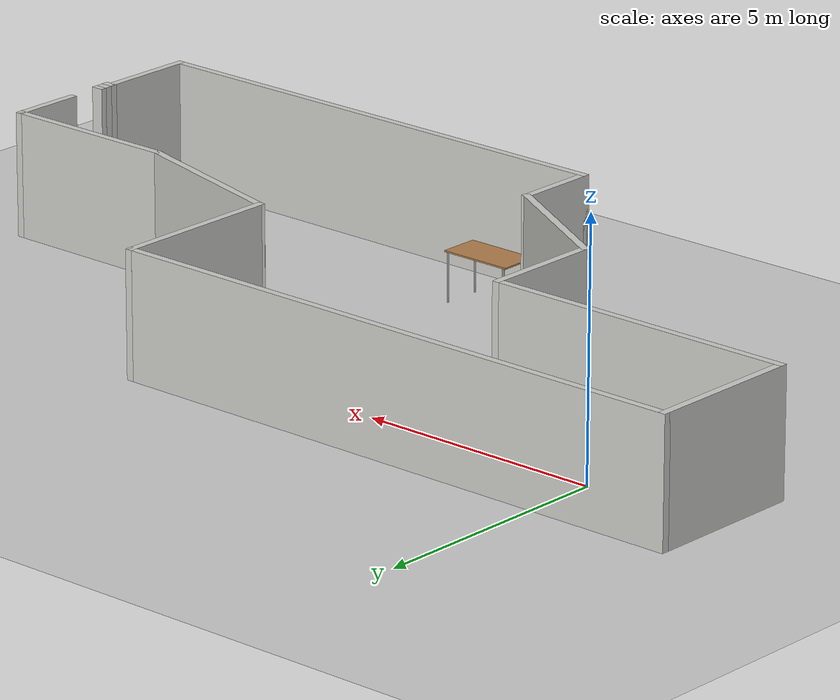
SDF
<sdf version="1.7">
 <world name="default">
  <light name="sun" type="directional">
   <pose>0 0 10 0 -0 0</pose>
   <diffuse>0.8 0.8 0.8 1</diffuse>
   <specular>0.2 0.2 0.2 1</specular>
   <attenuation>
    <range>1000</range>
    <constant>0.9</constant>
    <linear>0.01</linear>
    <quadratic>0.001</quadratic>
   </attenuation>
   <direction>-0.5 0.1 -0.9</direction>
   <spot><inner_angle>0</inner_angle><outer_angle>0</outer_angle><falloff>0</falloff></spot>
  </light>
  <model name="ground_plane">
   <static>1</static>
   <link name="link">
    <collision name="collision">
     <geometry><plane><normal>0 0 1</normal><size>100 100</size></plane></geometry>
     <surface>
      <contact><collide_bitmask>65535</collide_bitmask></contact>
      <friction><ode><mu>100</mu><mu2>50</mu2></ode></friction>
     </surface>
    </collision>
    <visual name="visual">
     <cast_shadows>0</cast_shadows>
     <geometry><plane><normal>0 0 1</normal><size>100 100</size></plane></geometry>
     <material>
      <script><uri>file://media/materials/scripts/gazebo.material</uri><name>Gazebo/Grey</name></script>
     </material>
    </visual>
   </link>
  </model>
  <gravity>0 0 -9.8</gravity>
  <magnetic_field>6e-06 2.3e-05 -4.2e-05</magnetic_field>
  <atmosphere type="adiabatic"/>
  <physics type="ode">
   <max_step_size>0.001</max_step_size>
   <real_time_factor>1</real_time_factor>
   <real_time_update_rate>1000</real_time_update_rate>
  </physics>
  <scene><ambient>0.4 0.4 0.4 1</ambient><background>0.7 0.7 0.7 1</background><shadows>1</shadows></scene>
  <spherical_coordinates>
   <surface_model>EARTH_WGS84</surface_model>
   <latitude_deg>0</latitude_deg>
   <longitude_deg>0</longitude_deg>
   <elevation>0</elevation>
   <heading_deg>0</heading_deg>
  </spherical_coordinates>
  <model name="z-shaped-room">
   <pose>6.87303 -2.86722 0 0 -0 0</pose>
   <link name="Wall_0">
    <collision name="Wall_0_Collision">
     <geometry><box><size>1.5 0.15 2.5</size></box></geometry>
     <pose>0 0 1.25 0 -0 0</pose>
    </collision>
    <visual name="Wall_0_Visual">
     <pose>0 0 1.25 0 -0 0</pose>
     <geometry><box><size>1.5 0.15 2.5</size></box></geometry>
     <material>
      <script><uri>file://media/materials/scripts/gazebo.material</uri><name>Gazebo/CeilingTiled</name></script>
      <ambient>1 1 1 1</ambient>
     </material>
     <meta><layer>0</layer></meta>
    </visual>
    <pose>9.71367 -0.656749 0 0 -0 1.5708</pose>
   </link>
   <link name="Wall_1">
    <collision name="Wall_1_Collision">
     <geometry><box><size>3.75 0.15 2.5</size></box></geometry>
     <pose>0 0 1.25 0 -0 0</pose>
    </collision>
    <visual name="Wall_1_Visual">
     <pose>0 0 1.25 0 -0 0</pose>
     <geometry><box><size>3.75 0.15 2.5</size></box></geometry>
     <material>
      <script><uri>file://media/materials/scripts/gazebo.material</uri><name>Gazebo/CeilingTiled</name></script>
      <ambient>1 1 1 1</ambient>
     </material>
     <meta><layer>0</layer></meta>
    </visual>
    <pose>7.91367 0.018251 0 0 -0 3.14159</pose>
   </link>
   <link name="Wall_10">
    <collision name="Wall_10_Collision">
     <geometry><box><size>10.5 0.15 2.5</size></box></geometry>
     <pose>0 0 1.25 0 -0 0</pose>
    </collision>
    <visual name="Wall_10_Visual">
     <pose>0 0 1.25 0 -0 0</pose>
     <geometry><box><size>10.5 0.15 2.5</size></box></geometry>
     <material>
      <script><uri>file://media/materials/scripts/gazebo.material</uri><name>Gazebo/CeilingTiled</name></script>
      <ambient>1 1 1 1</ambient>
     </material>
     <meta><layer>0</layer></meta>
    </visual>
    <pose>4.49601 -4.3 0 0 -0 0</pose>
   </link>
   <link name="Wall_11">
    <collision name="Wall_11_Collision">
     <geometry><box><size>2 0.15 2.5</size></box></geometry>
     <pose>0 0 1.25 0 -0 0</pose>
    </collision>
    <visual name="Wall_11_Visual">
     <pose>0 0 1.25 0 -0 0</pose>
     <geometry><box><size>2 0.15 2.5</size></box></geometry>
     <material>
      <script><uri>file://media/materials/scripts/gazebo.material</uri><name>Gazebo/CeilingTiled</name></script>
      <ambient>1 1 1 1</ambient>
     </material>
     <meta><layer>0</layer></meta>
    </visual>
    <pose>9.67101 -3.375 0 0 -0 1.5708</pose>
   </link>
   <link name="Wall_2">
    <collision name="Wall_2_Collision">
     <geometry><box><size>3.75 0.15 2.5</size></box></geometry>
     <pose>0 0 1.25 0 -0 0</pose>
    </collision>
    <visual name="Wall_2_Visual">
     <pose>0 0 1.25 0 -0 0</pose>
     <geometry><box><size>3.75 0.15 2.5</size></box></geometry>
     <material>
      <script><uri>file://media/materials/scripts/gazebo.material</uri><name>Gazebo/CeilingTiled</name></script>
      <ambient>1 1 1 1</ambient>
     </material>
     <meta><layer>0</layer></meta>
    </visual>
    <pose>4.375 0.484126 0 0 -0 2.87979</pose>
   </link>
   <link name="Wall_3">
    <collision name="Wall_3_Collision">
     <geometry><box><size>3.5 0.15 2.5</size></box></geometry>
     <pose>0 0 1.25 0 -0 0</pose>
    </collision>
    <visual name="Wall_3_Visual">
     <pose>0 0 1.25 0 -0 0</pose>
     <geometry><box><size>3.5 0.15 2.5</size></box></geometry>
     <material>
      <script><uri>file://media/materials/scripts/gazebo.material</uri><name>Gazebo/CeilingTiled</name></script>
      <ambient>1 1 1 1</ambient>
     </material>
     <meta><layer>0</layer></meta>
    </visual>
    <pose>2.63633 2.625 0 0 -0 1.5708</pose>
   </link>
   <link name="Wall_4">
    <collision name="Wall_4_Collision">
     <geometry><box><size>12.5 0.15 2.5</size></box></geometry>
     <pose>0 0 1.25 0 -0 0</pose>
    </collision>
    <visual name="Wall_4_Visual">
     <pose>0 0 1.25 0 -0 0</pose>
     <geometry><box><size>12.5 0.15 2.5</size></box></geometry>
     <material>
      <script><uri>file://media/materials/scripts/gazebo.material</uri><name>Gazebo/CeilingTiled</name></script>
      <ambient>1 1 1 1</ambient>
     </material>
     <meta><layer>0</layer></meta>
    </visual>
    <pose>-3.53867 4.3 0 0 -0 3.14159</pose>
   </link>
   <link name="Wall_5">
    <collision name="Wall_5_Collision">
     <geometry><box><size>3.25 0.15 2.5</size></box></geometry>
     <pose>0 0 1.25 0 -0 0</pose>
    </collision>
    <visual name="Wall_5_Visual">
     <pose>0 0 1.25 0 -0 0</pose>
     <geometry><box><size>3.25 0.15 2.5</size></box></geometry>
     <material>
      <script><uri>file://media/materials/scripts/gazebo.material</uri><name>Gazebo/CeilingTiled</name></script>
      <ambient>1 1 1 1</ambient>
     </material>
     <meta><layer>0</layer></meta>
    </visual>
    <pose>-9.71367 2.75 0 0 -0 -1.5708</pose>
   </link>
   <link name="Wall_6">
    <collision name="Wall_6_Collision">
     <geometry><box><size>6.5 0.15 2.5</size></box></geometry>
     <pose>0 0 1.25 0 -0 0</pose>
    </collision>
    <visual name="Wall_6_Visual">
     <pose>0 0 1.25 0 -0 0</pose>
     <geometry><box><size>6.5 0.15 2.5</size></box></geometry>
     <material>
      <script><uri>file://media/materials/scripts/gazebo.material</uri><name>Gazebo/CeilingTiled</name></script>
      <ambient>1 1 1 1</ambient>
     </material>
     <meta><layer>0</layer></meta>
    </visual>
    <pose>-6.53867 1.2 0 0 -0 0</pose>
   </link>
   <link name="Wall_7">
    <collision name="Wall_7_Collision">
     <geometry><box><size>2.5 0.15 2.5</size></box></geometry>
     <pose>0 0 1.25 0 -0 0</pose>
    </collision>
    <visual name="Wall_7_Visual">
     <pose>0 0 1.25 0 -0 0</pose>
     <geometry><box><size>2.5 0.15 2.5</size></box></geometry>
     <material>
      <script><uri>file://media/materials/scripts/gazebo.material</uri><name>Gazebo/CeilingTiled</name></script>
      <ambient>1 1 1 1</ambient>
     </material>
     <meta><layer>0</layer></meta>
    </visual>
    <pose>-3.36367 0.025 0 0 -0 -1.5708</pose>
   </link>
   <link name="Wall_8">
    <collision name="Wall_8_Collision">
     <geometry><box><size>3.25 0.15 2.5</size></box></geometry>
     <pose>0 0 1.25 0 -0 0</pose>
    </collision>
    <visual name="Wall_8_Visual">
     <pose>0 0 1.25 0 -0 0</pose>
     <geometry><box><size>3.25 0.15 2.5</size></box></geometry>
     <material>
      <script><uri>file://media/materials/scripts/gazebo.material</uri><name>Gazebo/CeilingTiled</name></script>
      <ambient>1 1 1 1</ambient>
     </material>
     <meta><layer>0</layer></meta>
    </visual>
    <pose>-2.02133 -1.925 0 0 -0 -0.523599</pose>
   </link>
   <link name="Wall_9">
    <collision name="Wall_9_Collision">
     <geometry><box><size>1.75 0.15 2.5</size></box></geometry>
     <pose>0 0 1.25 0 -0 0</pose>
    </collision>
    <visual name="Wall_9_Visual">
     <pose>0 0 1.25 0 -0 0</pose>
     <geometry><box><size>1.75 0.15 2.5</size></box></geometry>
     <material>
      <script><uri>file://media/materials/scripts/gazebo.material</uri><name>Gazebo/CeilingTiled</name></script>
      <ambient>1 1 1 1</ambient>
     </material>
     <meta><layer>0</layer></meta>
    </visual>
    <pose>-0.678988 -3.5 0 0 -0 -1.5708</pose>
   </link>
   <static>1</static>
  </model>
  <model name="table">
   <static>1</static>
   <link name="link">
    <collision name="surface">
     <pose>0 0 1 0 -0 0</pose>
     <geometry><box><size>1.5 0.8 0.03</size></box></geometry>
     <surface><friction><ode><mu>0.6</mu><mu2>0.6</mu2></ode></friction></surface>
    </collision>
    <visual name="visual1">
     <pose>0 0 1 0 -0 0</pose>
     <geometry><box><size>1.5 0.8 0.03</size></box></geometry>
     <material>
      <script><uri>file://media/materials/scripts/gazebo.material</uri><name>Gazebo/Wood</name></script>
     </material>
    </visual>
    <collision name="front_left_leg">
     <pose>0.68 0.38 0.5 0 -0 0</pose>
     <geometry><cylinder><radius>0.02</radius><length>1</length></cylinder></geometry>
    </collision>
    <visual name="front_left_leg">
     <pose>0.68 0.38 0.5 0 -0 0</pose>
     <geometry><cylinder><radius>0.02</radius><length>1</length></cylinder></geometry>
     <material>
      <script><uri>file://media/materials/scripts/gazebo.material</uri><name>Gazebo/Grey</name></script>
     </material>
    </visual>
    <collision name="front_right_leg">
     <pose>0.68 -0.38 0.5 0 -0 0</pose>
     <geometry><cylinder><radius>0.02</radius><length>1</length></cylinder></geometry>
    </collision>
    <visual name="front_right_leg">
     <pose>0.68 -0.38 0.5 0 -0 0</pose>
     <geometry><cylinder><radius>0.02</radius><length>1</length></cylinder></geometry>
     <material>
      <script><uri>file://media/materials/scripts/gazebo.material</uri><name>Gazebo/Grey</name></script>
     </material>
    </visual>
    <collision name="back_right_leg">
     <pose>-0.68 -0.38 0.5 0 -0 0</pose>
     <geometry><cylinder><radius>0.02</radius><length>1</length></cylinder></geometry>
    </collision>
    <visual name="back_right_leg">
     <pose>-0.68 -0.38 0.5 0 -0 0</pose>
     <geometry><cylinder><radius>0.02</radius><length>1</length></cylinder></geometry>
     <material>
      <script><uri>file://media/materials/scripts/gazebo.material</uri><name>Gazebo/Grey</name></script>
     </material>
    </visual>
    <collision name="back_left_leg">
     <pose>-0.68 0.38 0.5 0 -0 0</pose>
     <geometry><cylinder><radius>0.02</radius><length>1</length></cylinder></geometry>
    </collision>
    <visual name="back_left_leg">
     <pose>-0.68 0.38 0.5 0 -0 0</pose>
     <geometry><cylinder><radius>0.02</radius><length>1</length></cylinder></geometry>
     <material>
      <script><uri>file://media/materials/scripts/gazebo.material</uri><name>Gazebo/Grey</name></script>
     </material>
    </visual>
   </link>
   <pose>7.35254 -5.84654 0 0 -0 0</pose>
  </model>
  <model name="door-model">
   <link name="door">
    <inertial>
     <mass>20</mass>
     <inertia>
      <ixx>4.53808</ixx>
      <ixy>0</ixy>
      <ixz>0</ixz>
      <iyy>4.54003</iyy>
      <iyz>0</iyz>
      <izz>0.0512722</izz>
     </inertia>
    </inertial>
    <gravity>0</gravity>
    <visual name="visual">
     <geometry>
      <mesh><uri>model://door-model/./Door-VHandles-noFrame.stl</uri><scale>0.001 0.001 0.001</scale></mesh>
     </geometry>
     <material>
      <lighting>1</lighting>
      <script><uri>file://media/materials/scripts/gazebo.material</uri><name>Gazebo/Grey</name></script>
      <shader type="pixel"><normal_map>__default__</normal_map></shader>
      <ambient>0.3 0.3 0.3 1</ambient>
      <diffuse>0.7 0.7 0.7 1</diffuse>
      <specular>0.01 0.01 0.01 1</specular>
      <emissive>0 0 0 1</emissive>
     </material>
    </visual>
    <collision name="collision">
     <geometry>
      <mesh><uri>model://door-model/./Door-VHandles-noFrame.stl</uri><scale>0.001 0.001 0.001</scale></mesh>
     </geometry>
     <surface>
      <friction>
       <ode><mu>1</mu><mu2>1</mu2><fdir1>0 0 0</fdir1><slip1>0</slip1><slip2>0</slip2></ode>
       <torsional>
        <coefficient>1</coefficient>
        <patch_radius>0</patch_radius>
        <surface_radius>0</surface_radius>
        <use_patch_radius>1</use_patch_radius>
        <ode><slip>0</slip></ode>
       </torsional>
      </friction>
      <bounce><restitution_coefficient>0</restitution_coefficient><threshold>1e+06</threshold></bounce>
      <contact>
       <collide_without_contact>0</collide_without_contact>
       <collide_without_contact_bitmask>1</collide_without_contact_bitmask>
       <collide_bitmask>1</collide_bitmask>
       <ode>
        <soft_cfm>0</soft_cfm>
        <soft_erp>0.2</soft_erp>
        <kp>1e+13</kp>
        <kd>1</kd>
        <max_vel>0.01</max_vel>
        <min_depth>0</min_depth>
       </ode>
       <bullet>
        <split_impulse>1</split_impulse>
        <split_impulse_penetration_threshold>-0.01</split_impulse_penetration_threshold>
        <soft_cfm>0</soft_cfm>
        <soft_erp>0.2</soft_erp>
        <kp>1e+13</kp>
        <kd>1</kd>
       </bullet>
      </contact>
     </surface>
    </collision>
   </link>
   <link name="pole">
    <inertial>
     <mass>100</mass>
     <inertia>
      <ixx>0.001</ixx>
      <ixy>0.001</ixy>
      <ixz>0.001</ixz>
      <iyy>0.001</iyy>
      <iyz>0.001</iyz>
      <izz>0.001</izz>
     </inertia>
    </inertial>
    <pose>-0.02632 0 0.308096 0 -0 0</pose>
    <gravity>0</gravity>
    <kinematic>1</kinematic>
    <visual name="visual">
     <geometry><box><size>0.048276 0.0462 0.625074</size></box></geometry>
     <material>
      <lighting>1</lighting>
      <script><uri>file://media/materials/scripts/gazebo.material</uri><name>Gazebo/Grey</name></script>
      <shader type="pixel"><normal_map>__default__</normal_map></shader>
      <ambient>0.3 0.3 0.3 1</ambient>
      <diffuse>0.7 0.7 0.7 1</diffuse>
      <specular>0.01 0.01 0.01 1</specular>
      <emissive>0 0 0 1</emissive>
     </material>
    </visual>
    <collision name="collision">
     <geometry><box><size>0.048 0.046201 0.625074</size></box></geometry>
     <surface>
      <friction>
       <ode><mu>1</mu><mu2>1</mu2><fdir1>0 0 0</fdir1><slip1>0</slip1><slip2>0</slip2></ode>
       <torsional>
        <coefficient>1</coefficient>
        <patch_radius>0</patch_radius>
        <surface_radius>0</surface_radius>
        <use_patch_radius>1</use_patch_radius>
        <ode><slip>0</slip></ode>
       </torsional>
      </friction>
      <bounce><restitution_coefficient>0</restitution_coefficient><threshold>1e+06</threshold></bounce>
      <contact>
       <collide_without_contact>0</collide_without_contact>
       <collide_without_contact_bitmask>1</collide_without_contact_bitmask>
       <collide_bitmask>1</collide_bitmask>
       <ode>
        <soft_cfm>0</soft_cfm>
        <soft_erp>0.2</soft_erp>
        <kp>1e+13</kp>
        <kd>1</kd>
        <max_vel>0.01</max_vel>
        <min_depth>0</min_depth>
       </ode>
       <bullet>
        <split_impulse>1</split_impulse>
        <split_impulse_penetration_threshold>-0.01</split_impulse_penetration_threshold>
        <soft_cfm>0</soft_cfm>
        <soft_erp>0.2</soft_erp>
        <kp>1e+13</kp>
        <kd>1</kd>
       </bullet>
      </contact>
     </surface>
    </collision>
   </link>
   <joint name="hinge" type="revolute">
    <parent>pole</parent>
    <child>door</child>
    <pose>0 0 0.3 0 -0 0</pose>
    <axis>
     <xyz>0 0 1</xyz>
     <limit><lower>-1.74533</lower><upper>1.74533</upper><effort>3900</effort><velocity>0.62</velocity></limit>
     <dynamics>
      <spring_reference>0</spring_reference>
      <spring_stiffness>0</spring_stiffness>
      <damping>0.1</damping>
      <friction>0.1</friction>
     </dynamics>
    </axis>
    <physics>
     <ode><limit><cfm>0</cfm><erp>0.2</erp></limit><suspension><cfm>0</cfm><erp>0.2</erp></suspension></ode>
    </physics>
   </joint>
   <static>0</static>
   <pose>16.6141 -4.32499 0 -0 -0 -1.57265</pose>
  </model>
  <model name="gap-filler-tile">
   <pose>17.9703 -2.1436 0 0 -0 0</pose>
   <link name="Wall_4">
    <collision name="Wall_4_Collision">
     <geometry><box><size>0.25 0.15 2.5</size></box></geometry>
     <pose>0 0 1.25 0 -0 0</pose>
    </collision>
    <visual name="Wall_4_Visual">
     <pose>0 0 1.25 0 -0 0</pose>
     <geometry><box><size>0.25 0.15 2.5</size></box></geometry>
     <material>
      <script><uri>file://media/materials/scripts/gazebo.material</uri><name>Gazebo/CeilingTiled</name></script>
      <ambient>1 1 1 1</ambient>
     </material>
     <meta><layer>0</layer></meta>
    </visual>
    <pose>-1.38938 -3.0906 0 0 -0 3.14159</pose>
   </link>
   <static>1</static>
  </model>
  <model name="gap-filler-tile_0">
   <pose>17.9628 -1.99841 0 0 -0 0</pose>
   <link name="Wall_4">
    <collision name="Wall_4_Collision">
     <geometry><box><size>0.25 0.15 2.5</size></box></geometry>
     <pose>0 0 1.25 0 -0 0</pose>
    </collision>
    <visual name="Wall_4_Visual">
     <pose>0 0 1.25 0 -0 0</pose>
     <geometry><box><size>0.25 0.15 2.5</size></box></geometry>
     <material>
      <script><uri>file://media/materials/scripts/gazebo.material</uri><name>Gazebo/CeilingTiled</name></script>
      <ambient>1 1 1 1</ambient>
     </material>
     <meta><layer>0</layer></meta>
    </visual>
    <pose>-1.38938 -3.0906 0 0 -0 3.14159</pose>
   </link>
   <static>1</static>
  </model>
  <model name="gap-filler-tile_1">
   <pose>17.9631 -1.87568 0 0 -0 0</pose>
   <link name="Wall_4">
    <collision name="Wall_4_Collision">
     <geometry><box><size>0.25 0.15 2.5</size></box></geometry>
     <pose>0 0 1.25 0 -0 0</pose>
    </collision>
    <visual name="Wall_4_Visual">
     <pose>0 0 1.25 0 -0 0</pose>
     <geometry><box><size>0.25 0.15 2.5</size></box></geometry>
     <material>
      <script><uri>file://media/materials/scripts/gazebo.material</uri><name>Gazebo/CeilingTiled</name></script>
      <ambient>1 1 1 1</ambient>
     </material>
     <meta><layer>0</layer></meta>
    </visual>
    <pose>-1.38938 -3.0906 0 0 -0 3.14159</pose>
   </link>
   <static>1</static>
  </model>
 </world>
</sdf>
